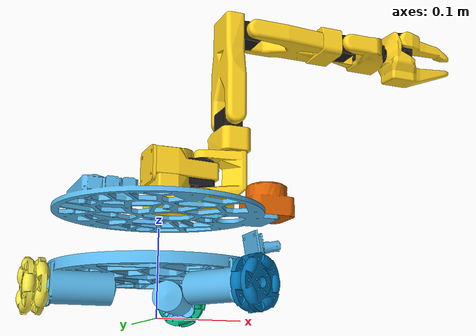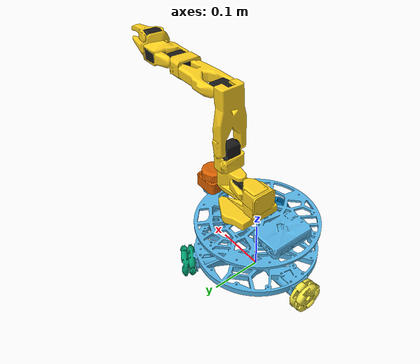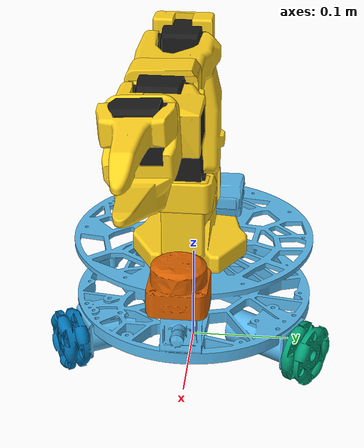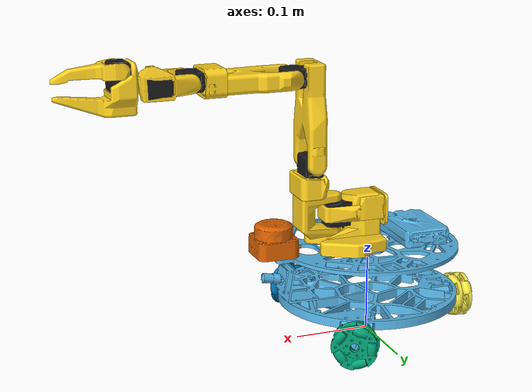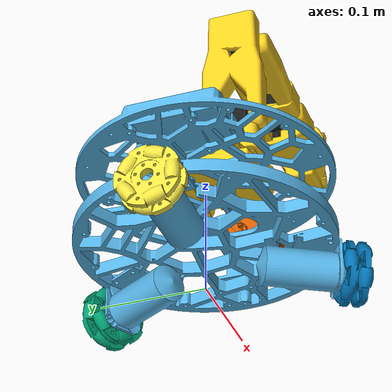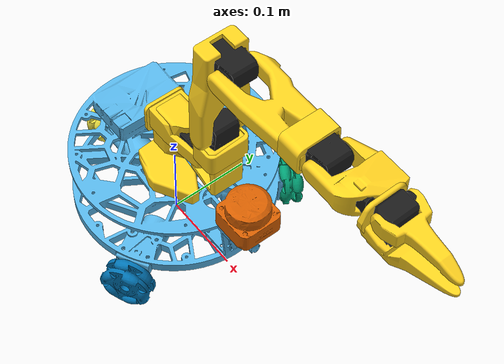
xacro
<?xml version="1.0"?>
<!-- mmr_bot - top-level description                                        -->
<!--   base_footprint                                                       -->
<!--    +- base_link                        (chassis, camera and Pi merged)  -->
<!--        +- wheel_0_link                 continuous,  60 deg              -->
<!--        +- wheel_1_link                 continuous, 180 deg              -->
<!--        +- wheel_2_link                 continuous, 300 deg              -->
<!--        +- laser_frame                  fixed, RPLIDAR C1                -->
<!--        +- arm_base_link                fixed, SO-101 mount              -->
<!--            +- arm_shoulder_link        shoulder_pan                     -->
<!--                +- arm_upper_arm_link   shoulder_lift                    -->
<!--                    +- arm_lower_arm_link   elbow_flex                   -->
<!--                        +- arm_wrist_link   wrist_flex                   -->
<!--                            +- arm_gripper_link         wrist_roll       -->
<!--                                +- arm_moving_jaw_..._link  gripper      -->
<!--                                +- arm_gripper_frame_link   fixed        -->
<!-- 14 links, 13 joints, of which 9 are movable (3 wheels + 6 arm).         -->
<robot name="mmr_bot" xmlns:xacro="http://www.ros.org/wiki/xacro">

  <xacro:include filename="$(find mmr_pkg)/urdf/inertial_macros.xacro"/>
  <xacro:include filename="$(find mmr_pkg)/urdf/base.xacro"/>
  <xacro:include filename="$(find mmr_pkg)/urdf/sensors.xacro"/>
  <xacro:include filename="$(find mmr_pkg)/urdf/arm.xacro"/>

  <!-- SO-101 arm mount.                                                   -->
  <!-- Solved exactly, not eyeballed. The CAD part 'Base_SO101 v12:1' and   -->
  <!-- upstream 'base_so101_v2.stl' were shown to share an identical local  -->
  <!-- mesh frame (bbox agreement to 1e-16 m), so the arm's URDF base_link  -->
  <!-- is recovered as  T_arm = T_cad_world * inv(T_urdf_visual_origin).    -->
  <!-- Round-tripping the STL back through that transform reproduces the    -->
  <!-- CAD world bbox to within 0.5 mm. See tools/arm_mount.py.             -->
  <!-- rpy is exactly zero: the arm's forward axis already coincides with   -->
  <!-- the robot's, both facing CAD -Y.                                     -->
  <xacro:property name="arm_mount_x" value="0.014091"/>
  <xacro:property name="arm_mount_y" value="-0.000442"/>
  <xacro:property name="arm_mount_z" value="0.079200"/>

  <xacro:so101_arm prefix="arm_" parent="base_link">
    <origin xyz="${arm_mount_x} ${arm_mount_y} ${arm_mount_z}" rpy="0 0 0"/>
  </xacro:so101_arm>

</robot>

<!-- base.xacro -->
<!-- mmr_bot chassis: kiwi drive, three omniwheels at 120 degrees.          -->
<!-- EVERY dimension below is measured from the Fusion 360 STEP export       -->
<!-- (tools/step_parse.py -> tools/extract_meshes.py). Nothing is invented.  -->
<!-- Provenance for each value is in README.md, section "Derived geometry".  -->
<!-- Frame convention (brief section 3.3):                                   -->
<!--   base_footprint  ground plane, directly under the wheel-triad centre   -->
<!--   base_link       underside of the base plate, +X forward, +Z up        -->
<!--   wheel_i_link    at the axle; local +X is the spin axis, pointing      -->
<!--                   radially OUTWARD along the mounting angle             -->
<robot xmlns:xacro="http://www.ros.org/wiki/xacro">

  <!-- GEOMETRY - edit here and nowhere else                              -->

  <xacro:property name="wheel_radius"        value="0.030"/>
  <xacro:property name="wheel_width"         value="0.019"/>

  <!-- Centre of the wheel triad to each wheel centre. All three measure
       135.500 mm from the triad centroid, equal to better than 0.001 mm. -->
  <xacro:property name="base_radius"         value="0.135500"/>

  <!-- Mounting angles, degrees CCW from +X (forward). Confirmed: forward is
       CAD -Y, the direction the lidar, camera and arm all face. -->
  <xacro:property name="wheel_0_angle_deg"   value="60"/>
  <xacro:property name="wheel_1_angle_deg"   value="180"/>
  <xacro:property name="wheel_2_angle_deg"   value="300"/>

  <!-- Ground to base_link. base_link is the underside of the base plate;
       the plate measures z = 0.0001..12.0001 mm in this frame. -->
  <xacro:property name="base_link_height"    value="0.045"/>

  <xacro:property name="base_plate_radius"   value="0.120"/>
  <xacro:property name="base_plate_thick"    value="0.012"/>
  <xacro:property name="base_plate_z"        value="0.0"/>

  <xacro:property name="top_plate_radius"    value="0.120"/>
  <xacro:property name="top_plate_thick"     value="0.005"/>
  <xacro:property name="top_plate_z"         value="0.072"/>

  <xacro:property name="wheel_z" value="${wheel_radius - base_link_height}"/>

  <xacro:property name="use_inertial" value="false"/>

  <xacro:property name="deg" value="${pi/180.0}"/>

  <xacro:property name="mesh_visual"    value="package://mmr_pkg/meshes/visual"/>
  <xacro:property name="mesh_collision" value="package://mmr_pkg/meshes/collision"/>

  <!-- base_footprint                                                      -->
  <!-- link, and a footprint frame is massless by definition.              -->
  <link name="base_footprint"/>

  <joint name="base_footprint_joint" type="fixed">
    <origin xyz="0 0 ${base_link_height}" rpy="0 0 0"/>
    <parent link="base_footprint"/>
    <child  link="base_link"/>
  </joint>

  <!-- base_link                                                           -->
  <link name="base_link">
    <visual>
      <origin xyz="0 0 0" rpy="0 0 0"/>
      <geometry>
        <mesh filename="${mesh_visual}/base_link.obj"/>
      </geometry>
    </visual>

    <!-- Base plate: cylinder primitive, as the brief requires. -->
    <collision>
      <origin xyz="0 0 ${base_plate_z + base_plate_thick/2}" rpy="0 0 0"/>
      <geometry>
        <cylinder radius="${base_plate_radius}" length="${base_plate_thick}"/>
      </geometry>
    </collision>

    <!-- Top plate: cylinder primitive (forward lidar tab not included). -->
    <collision>
      <origin xyz="0 0 ${top_plate_z + top_plate_thick/2}" rpy="0 0 0"/>
      <geometry>
        <cylinder radius="${top_plate_radius}" length="${top_plate_thick}"/>
      </geometry>
    </collision>

    <!-- Motor + mount pod under each wheel. One convex hull, extracted in a
         canonical 0-degree frame, reused at all three mounting angles. -->
    <xacro:macro name="motor_pod_collision" params="angle_deg">
      <collision>
        <origin xyz="0 0 0" rpy="0 0 ${angle_deg * deg}"/>
        <geometry>
          <mesh filename="${mesh_collision}/motor_pod.stl"/>
        </geometry>
      </collision>
    </xacro:macro>
    <xacro:motor_pod_collision angle_deg="${wheel_0_angle_deg}"/>
    <xacro:motor_pod_collision angle_deg="${wheel_1_angle_deg}"/>
    <xacro:motor_pod_collision angle_deg="${wheel_2_angle_deg}"/>

    <!-- Camera pod and Pi stack: convex hulls, already in base_link frame. -->
    <collision>
      <origin xyz="0 0 0" rpy="0 0 0"/>
      <geometry>
        <mesh filename="${mesh_collision}/camera_pod.stl"/>
      </geometry>
    </collision>
    <collision>
      <origin xyz="0 0 0" rpy="0 0 0"/>
      <geometry>
        <mesh filename="${mesh_collision}/pi_stack.stl"/>
      </geometry>
    </collision>

    <xacro:if value="${use_inertial}">
    </xacro:if>
  </link>

  <!-- Wheels                                                              -->
  <!-- The link frame is base_link -> Trans(base_radius @ angle, wheel_z)   -->
  <!--                             -> Rz(angle)                            -->
  <!-- so local +X is radially outward and IS the spin axis. wheel.obj was  -->
  <!-- exported into exactly this frame, which is why one mesh serves all   -->
  <!-- three wheels. Verified after export: radius 0.03001 m about local    -->
  <!-- +X, half-width 0.01365 m.                                           -->
  <xacro:macro name="omni_wheel" params="index angle_deg">
    <joint name="wheel_${index}_joint" type="continuous">
      <origin xyz="${base_radius * cos(angle_deg * deg)}
                   ${base_radius * sin(angle_deg * deg)}
                   ${wheel_z}"
              rpy="0 0 ${angle_deg * deg}"/>
      <parent link="base_link"/>
      <child  link="wheel_${index}_link"/>
      <axis xyz="1 0 0"/>
    </joint>

    <link name="wheel_${index}_link">
      <visual>
        <origin xyz="0 0 0" rpy="0 0 0"/>
        <geometry>
          <mesh filename="${mesh_visual}/wheel.obj"/>
        </geometry>
      </visual>

      <!-- Cylinder primitive, as the brief requires. A URDF cylinder is
           built about +Z, so rotate it onto the +X spin axis. -->
      <collision>
        <origin xyz="0 0 0" rpy="0 ${pi/2} 0"/>
        <geometry>
          <cylinder radius="${wheel_radius}" length="${wheel_width}"/>
        </geometry>
      </collision>

      <!-- TODO(inertial): per-wheel mass not supplied. See base_link. -->
      <xacro:if value="${use_inertial}">
      </xacro:if>
    </link>
  </xacro:macro>

  <xacro:omni_wheel index="0" angle_deg="${wheel_0_angle_deg}"/>
  <xacro:omni_wheel index="1" angle_deg="${wheel_1_angle_deg}"/>
  <xacro:omni_wheel index="2" angle_deg="${wheel_2_angle_deg}"/>

</robot>

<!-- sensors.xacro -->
<!-- Sensors. Phase 1 adds the link and fixed joint only; the Gazebo         -->
<!-- gpu_lidar sensor and the ros_gz bridge belong to Phase 2.               -->
<robot xmlns:xacro="http://www.ros.org/wiki/xacro">

  <xacro:property name="laser_x" value="0.133781"/>
  <xacro:property name="laser_y" value="0.000004"/>
  <xacro:property name="laser_z" value="0.105180"/>

  <!-- rpy is identity: the lidar body is axis-aligned with base_link in CAD,
       and the C1 scans in its own XY plane with zero angle at its +X. -->
  <xacro:property name="laser_roll"  value="0"/>
  <xacro:property name="laser_pitch" value="0"/>
  <xacro:property name="laser_yaw"   value="0"/>

  <joint name="laser_joint" type="fixed">
    <origin xyz="${laser_x} ${laser_y} ${laser_z}"
            rpy="${laser_roll} ${laser_pitch} ${laser_yaw}"/>
    <parent link="base_link"/>
    <child  link="laser_frame"/>
  </joint>

  <link name="laser_frame">
    <visual>
      <origin xyz="0 0 0" rpy="0 0 0"/>
      <geometry>
        <mesh filename="package://mmr_pkg/meshes/visual/rplidar_c1.obj"/>
      </geometry>
    </visual>
    <collision>
      <origin xyz="0 0 0" rpy="0 0 0"/>
      <geometry>
        <mesh filename="package://mmr_pkg/meshes/collision/rplidar_c1.stl"/>
      </geometry>
    </collision>
    <!-- TODO(inertial): RPLIDAR C1 mass not supplied. Datasheet value or a
         Fusion physical-properties readout would fill this. Not invented. -->
  </link>

</robot>

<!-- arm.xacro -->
<!-- SO-101 arm, vendored from TheRobotStudio/SO-ARM100                    -->
<!--   source: Simulation/SO101/so101_new_calib.urdf                       -->
<!--   GENERATED by tools/gen_arm_xacro.py - do not hand-edit.             -->
<!-- Joint names are deliberately NOT prefixed: a LeRobot policy is        -->
<!-- trained against this exact action space. Link names ARE prefixed to   -->
<!-- avoid colliding with the chassis root, which is also called           -->
<!-- base_link upstream.                                                   -->
<robot xmlns:xacro="http://www.ros.org/wiki/xacro">

  <material name="3d_printed">
    <color rgba="1.0 0.82 0.12 1.0"/>
  </material>
  <material name="sts3215">
    <color rgba="0.1 0.1 0.1 1.0"/>
  </material>

  <!-- prefix : name prefix for every arm LINK (not joints)
       parent : link the arm bolts to
       *origin: mount transform, parent -> ${prefix}base_link -->
  <xacro:macro name="so101_arm" params="prefix parent *origin">

    <joint name="${prefix}base_joint" type="fixed">
      <xacro:insert_block name="origin"/>
      <parent link="${parent}"/>
      <child link="${prefix}base_link"/>
    </joint>

    <!-- Link base -->
    <link name="${prefix}base_link">
      <inertial>
        <origin xyz="0.0137179 -5.19711e-05 0.0334843" rpy="0 0 0"/>
        <mass value="0.147"/>
        <inertia ixx="0.000114686" ixy="-4.59787e-07" ixz="4.97151e-06" iyy="0.000136117" iyz="9.75275e-08" izz="0.000130364"/>
      </inertial>
      <!-- Part base_motor_holder_so101_v1 -->
      <visual>
        <origin xyz="-0.00636471 -9.94414e-05 -0.0024" rpy="1.5708 -1.67685e-15 1.5708"/>
        <geometry>
          <mesh filename="package://mmr_pkg/meshes/arm/base_motor_holder_so101_v1.stl"/>
        </geometry>
        <material name="3d_printed"/>
      </visual>
      <collision>
        <origin xyz="-0.00636471 -9.94414e-05 -0.0024" rpy="1.5708 -1.67685e-15 1.5708"/>
        <geometry>
          <mesh filename="package://mmr_pkg/meshes/collision/arm/base_motor_holder_so101_v1.stl"/>
        </geometry>
      </collision>
      <!-- Part base_so101_v2 -->
      <visual>
        <origin xyz="-0.00636471 -8.97657e-09 -0.0024" rpy="1.5708 -2.78073e-29 1.5708"/>
        <geometry>
          <mesh filename="package://mmr_pkg/meshes/arm/base_so101_v2.stl"/>
        </geometry>
        <material name="3d_printed"/>
      </visual>
      <collision>
        <origin xyz="-0.00636471 -8.97657e-09 -0.0024" rpy="1.5708 -2.78073e-29 1.5708"/>
        <geometry>
          <mesh filename="package://mmr_pkg/meshes/collision/arm/base_so101_v2.stl"/>
        </geometry>
      </collision>
      <!-- Part sts3215_03a_v1 -->
      <visual>
        <origin xyz="0.0263353 -8.97657e-09 0.0437" rpy="-8.21148e-16 7.84513e-18 1.249e-15"/>
        <geometry>
          <mesh filename="package://mmr_pkg/meshes/arm/sts3215_03a_v1.stl"/>
        </geometry>
        <material name="sts3215"/>
      </visual>
      <collision>
        <origin xyz="0.0263353 -8.97657e-09 0.0437" rpy="-8.21148e-16 7.84513e-18 1.249e-15"/>
        <geometry>
          <mesh filename="package://mmr_pkg/meshes/collision/arm/sts3215_03a_v1.stl"/>
        </geometry>
      </collision>
      <!-- Part waveshare_mounting_plate_so101_v2 -->
      <visual>
        <origin xyz="-0.0309827 -0.000199441 0.0474" rpy="1.5708 -1.35493e-14 1.5708"/>
        <geometry>
          <mesh filename="package://mmr_pkg/meshes/arm/waveshare_mounting_plate_so101_v2.stl"/>
        </geometry>
        <material name="3d_printed"/>
      </visual>
      <collision>
        <origin xyz="-0.0309827 -0.000199441 0.0474" rpy="1.5708 -1.35493e-14 1.5708"/>
        <geometry>
          <mesh filename="package://mmr_pkg/meshes/collision/arm/waveshare_mounting_plate_so101_v2.stl"/>
        </geometry>
      </collision>
    </link>

    <!-- Link shoulder -->
    <link name="${prefix}shoulder_link">
      <inertial>
        <origin xyz="-0.0307604 -1.66727e-05 -0.0252713" rpy="0 0 0"/>
        <mass value="0.100006"/>
        <inertia ixx="8.3759e-05" ixy="7.55525e-08" ixz="-1.16342e-06" iyy="8.10403e-05" iyz="1.54663e-07" izz="2.39783e-05"/>
      </inertial>
      <!-- Part sts3215_03a_v1_2 -->
      <visual>
        <origin xyz="-0.0303992 0.000422241 -0.0417" rpy="1.5708 1.5708 0"/>
        <geometry>
          <mesh filename="package://mmr_pkg/meshes/arm/sts3215_03a_v1.stl"/>
        </geometry>
        <material name="sts3215"/>
      </visual>
      <collision>
        <origin xyz="-0.0303992 0.000422241 -0.0417" rpy="1.5708 1.5708 0"/>
        <geometry>
          <mesh filename="package://mmr_pkg/meshes/collision/arm/sts3215_03a_v1.stl"/>
        </geometry>
      </collision>
      <!-- Part motor_holder_so101_base_v1 -->
      <visual>
        <origin xyz="-0.0675992 -0.000177759 0.0158499" rpy="1.5708 -1.5708 0"/>
        <geometry>
          <mesh filename="package://mmr_pkg/meshes/arm/motor_holder_so101_base_v1.stl"/>
        </geometry>
        <material name="3d_printed"/>
      </visual>
      <collision>
        <origin xyz="-0.0675992 -0.000177759 0.0158499" rpy="1.5708 -1.5708 0"/>
        <geometry>
          <mesh filename="package://mmr_pkg/meshes/collision/arm/motor_holder_so101_base_v1.stl"/>
        </geometry>
      </collision>
      <!-- Part rotation_pitch_so101_v1 -->
      <visual>
        <origin xyz="0.0122008 2.22413e-05 0.0464" rpy="-1.5708 2.35221e-33 0"/>
        <geometry>
          <mesh filename="package://mmr_pkg/meshes/arm/rotation_pitch_so101_v1.stl"/>
        </geometry>
        <material name="3d_printed"/>
      </visual>
      <collision>
        <origin xyz="0.0122008 2.22413e-05 0.0464" rpy="-1.5708 2.35221e-33 0"/>
        <geometry>
          <mesh filename="package://mmr_pkg/meshes/collision/arm/rotation_pitch_so101_v1.stl"/>
        </geometry>
      </collision>
    </link>

    <!-- Link upper_arm -->
    <link name="${prefix}upper_arm_link">
      <inertial>
        <origin xyz="-0.0898471 -0.00838224 0.0184089" rpy="0 0 0"/>
        <mass value="0.103"/>
        <inertia ixx="4.08002e-05" ixy="-1.97819e-05" ixz="-4.03016e-08" iyy="0.000147318" iyz="8.97326e-09" izz="0.000142487"/>
      </inertial>
      <!-- Part sts3215_03a_v1_3 -->
      <visual>
        <origin xyz="-0.11257 -0.0155 0.0187" rpy="-3.14159 -5.27356e-16 -1.5708"/>
        <geometry>
          <mesh filename="package://mmr_pkg/meshes/arm/sts3215_03a_v1.stl"/>
        </geometry>
        <material name="sts3215"/>
      </visual>
      <collision>
        <origin xyz="-0.11257 -0.0155 0.0187" rpy="-3.14159 -5.27356e-16 -1.5708"/>
        <geometry>
          <mesh filename="package://mmr_pkg/meshes/collision/arm/sts3215_03a_v1.stl"/>
        </geometry>
      </collision>
      <!-- Part upper_arm_so101_v1 -->
      <visual>
        <origin xyz="-0.065085 0.012 0.0182" rpy="3.14159 -0 -1.30911e-30"/>
        <geometry>
          <mesh filename="package://mmr_pkg/meshes/arm/upper_arm_so101_v1.stl"/>
        </geometry>
        <material name="3d_printed"/>
      </visual>
      <collision>
        <origin xyz="-0.065085 0.012 0.0182" rpy="3.14159 -0 -1.30911e-30"/>
        <geometry>
          <mesh filename="package://mmr_pkg/meshes/collision/arm/upper_arm_so101_v1.stl"/>
        </geometry>
      </collision>
    </link>

    <!-- Link lower_arm -->
    <link name="${prefix}lower_arm_link">
      <inertial>
        <origin xyz="-0.0980701 0.00324376 0.0182831" rpy="0 0 0"/>
        <mass value="0.104"/>
        <inertia ixx="2.87438e-05" ixy="7.41152e-06" ixz="1.26409e-06" iyy="0.000159844" iyz="-4.90188e-08" izz="0.00014529"/>
      </inertial>
      <!-- Part under_arm_so101_v1 -->
      <visual>
        <origin xyz="-0.0648499 -0.032 0.0182" rpy="3.14159 -0 6.67202e-31"/>
        <geometry>
          <mesh filename="package://mmr_pkg/meshes/arm/under_arm_so101_v1.stl"/>
        </geometry>
        <material name="3d_printed"/>
      </visual>
      <collision>
        <origin xyz="-0.0648499 -0.032 0.0182" rpy="3.14159 -0 6.67202e-31"/>
        <geometry>
          <mesh filename="package://mmr_pkg/meshes/collision/arm/under_arm_so101_v1.stl"/>
        </geometry>
      </collision>
      <!-- Part motor_holder_so101_wrist_v1 -->
      <visual>
        <origin xyz="-0.0648499 -0.032 0.018" rpy="-3.14159 -2.55351e-15 -1.83387e-30"/>
        <geometry>
          <mesh filename="package://mmr_pkg/meshes/arm/motor_holder_so101_wrist_v1.stl"/>
        </geometry>
        <material name="3d_printed"/>
      </visual>
      <collision>
        <origin xyz="-0.0648499 -0.032 0.018" rpy="-3.14159 -2.55351e-15 -1.83387e-30"/>
        <geometry>
          <mesh filename="package://mmr_pkg/meshes/collision/arm/motor_holder_so101_wrist_v1.stl"/>
        </geometry>
      </collision>
      <!-- Part sts3215_03a_v1_4 -->
      <visual>
        <origin xyz="-0.1224 0.0052 0.0187" rpy="-3.14159 -7.88861e-31 -3.14159"/>
        <geometry>
          <mesh filename="package://mmr_pkg/meshes/arm/sts3215_03a_v1.stl"/>
        </geometry>
        <material name="sts3215"/>
      </visual>
      <collision>
        <origin xyz="-0.1224 0.0052 0.0187" rpy="-3.14159 -7.88861e-31 -3.14159"/>
        <geometry>
          <mesh filename="package://mmr_pkg/meshes/collision/arm/sts3215_03a_v1.stl"/>
        </geometry>
      </collision>
    </link>

    <!-- Link wrist -->
    <link name="${prefix}wrist_link">
      <inertial>
        <origin xyz="-0.000103312 -0.0386143 0.0281156" rpy="0 0 0"/>
        <mass value="0.079"/>
        <inertia ixx="3.68263e-05" ixy="1.7893e-08" ixz="-5.28128e-08" iyy="2.5391e-05" iyz="3.6412e-06" izz="2.1e-05"/>
      </inertial>
      <!-- Part sts3215_03a_no_horn_v1 -->
      <visual>
        <origin xyz="8.32667e-17 -0.0424 0.0306" rpy="1.5708 1.5708 0"/>
        <geometry>
          <mesh filename="package://mmr_pkg/meshes/arm/sts3215_03a_no_horn_v1.stl"/>
        </geometry>
        <material name="sts3215"/>
      </visual>
      <collision>
        <origin xyz="8.32667e-17 -0.0424 0.0306" rpy="1.5708 1.5708 0"/>
        <geometry>
          <mesh filename="package://mmr_pkg/meshes/collision/arm/sts3215_03a_no_horn_v1.stl"/>
        </geometry>
      </collision>
      <!-- Part wrist_roll_pitch_so101_v2 -->
      <visual>
        <origin xyz="0 -0.028 0.0181" rpy="-1.5708 -1.5708 0"/>
        <geometry>
          <mesh filename="package://mmr_pkg/meshes/arm/wrist_roll_pitch_so101_v2.stl"/>
        </geometry>
        <material name="3d_printed"/>
      </visual>
      <collision>
        <origin xyz="0 -0.028 0.0181" rpy="-1.5708 -1.5708 0"/>
        <geometry>
          <mesh filename="package://mmr_pkg/meshes/collision/arm/wrist_roll_pitch_so101_v2.stl"/>
        </geometry>
      </collision>
    </link>

    <!-- Link gripper -->
    <link name="${prefix}gripper_link">
      <inertial>
        <origin xyz="0.000213627 0.000245138 -0.025187" rpy="0 0 0"/>
        <mass value="0.087"/>
        <inertia ixx="2.75087e-05" ixy="-3.35241e-07" ixz="-5.7352e-06" iyy="4.33657e-05" iyz="-5.17847e-08" izz="3.45059e-05"/>
      </inertial>
      <!-- Part sts3215_03a_v1_5 -->
      <visual>
        <origin xyz="0.0077 0.0001 -0.0234" rpy="-1.5708 -5.19179e-17 -1.66533e-16"/>
        <geometry>
          <mesh filename="package://mmr_pkg/meshes/arm/sts3215_03a_v1.stl"/>
        </geometry>
        <material name="sts3215"/>
      </visual>
      <collision>
        <origin xyz="0.0077 0.0001 -0.0234" rpy="-1.5708 -5.19179e-17 -1.66533e-16"/>
        <geometry>
          <mesh filename="package://mmr_pkg/meshes/collision/arm/sts3215_03a_v1.stl"/>
        </geometry>
      </collision>
      <!-- Part wrist_roll_follower_so101_v1 -->
      <visual>
        <origin xyz="8.32667e-17 -0.000218214 0.000949706" rpy="-3.14159 -5.55112e-17 0"/>
        <geometry>
          <mesh filename="package://mmr_pkg/meshes/arm/wrist_roll_follower_so101_v1.stl"/>
        </geometry>
        <material name="3d_printed"/>
      </visual>
      <collision>
        <origin xyz="8.32667e-17 -0.000218214 0.000949706" rpy="-3.14159 -5.55112e-17 0"/>
        <geometry>
          <mesh filename="package://mmr_pkg/meshes/collision/arm/wrist_roll_follower_so101_v1.stl"/>
        </geometry>
      </collision>
    </link>

    <!-- Gripper frame (dummy link + fixed joint) -->
    <link name="${prefix}gripper_frame_link">
      <inertial>
        <origin xyz="0 0 0" rpy="0 0 0"/>
        <mass value="1e-9"/>
        <inertia ixx="0" ixy="0" ixz="0" iyy="0" iyz="0" izz="0"/>
      </inertial>
    </link>

    <joint name="gripper_frame_joint" type="fixed">
      <origin xyz="-0.0079 -0.000218121 -0.0981274" rpy="0 3.14159 0"/>
      <parent link="${prefix}gripper_link"/>
      <child link="${prefix}gripper_frame_link"/>
      <axis xyz="0 0 0"/>
    </joint>

    <!-- Link moving_jaw_so101_v1 -->
    <link name="${prefix}moving_jaw_so101_v1_link">
      <inertial>
        <origin xyz="-0.00157495 -0.0300244 0.0192755" rpy="0 0 0"/>
        <mass value="0.012"/>
        <inertia ixx="6.61427e-06" ixy="-3.19807e-07" ixz="-5.90717e-09" iyy="1.89032e-06" iyz="-1.09945e-07" izz="5.28738e-06"/>
      </inertial>
      <!-- Part moving_jaw_so101_v1 -->
      <visual>
        <origin xyz="-5.55112e-17 -5.55112e-17 0.0189" rpy="9.53145e-17 6.93889e-18 1.24077e-24"/>
        <geometry>
          <mesh filename="package://mmr_pkg/meshes/arm/moving_jaw_so101_v1.stl"/>
        </geometry>
        <material name="3d_printed"/>
      </visual>
      <collision>
        <origin xyz="-5.55112e-17 -5.55112e-17 0.0189" rpy="9.53145e-17 6.93889e-18 1.24077e-24"/>
        <geometry>
          <mesh filename="package://mmr_pkg/meshes/collision/arm/moving_jaw_so101_v1.stl"/>
        </geometry>
      </collision>
    </link>

    <!-- Joint from gripper to moving_jaw_so101_v1 -->
    <joint name="gripper" type="revolute">
      <origin xyz="0.0202 0.0188 -0.0234" rpy="1.5708 -5.24284e-08 -1.41553e-15"/>
      <parent link="${prefix}gripper_link"/>
      <child link="${prefix}moving_jaw_so101_v1_link"/>
      <axis xyz="0 0 1"/>
      <limit effort="10" velocity="10" lower="-0.174533" upper="1.74533"/>
    </joint>

    <!-- Joint from wrist to gripper -->
    <joint name="wrist_roll" type="revolute">
      <origin xyz="5.55112e-17 -0.0611 0.0181" rpy="1.5708 0.0486795 3.14159"/>
      <parent link="${prefix}wrist_link"/>
      <child link="${prefix}gripper_link"/>
      <axis xyz="0 0 1"/>
      <limit effort="10" velocity="10" lower="-2.74385" upper="2.84121"/>
    </joint>

    <!-- Joint from lower_arm to wrist -->
    <joint name="wrist_flex" type="revolute">
      <origin xyz="-0.1349 0.0052 3.62355e-17" rpy="4.02456e-15 8.67362e-16 -1.5708"/>
      <parent link="${prefix}lower_arm_link"/>
      <child link="${prefix}wrist_link"/>
      <axis xyz="0 0 1"/>
      <limit effort="10" velocity="10" lower="-1.65806" upper="1.65806"/>
    </joint>

    <!-- Joint from upper_arm to lower_arm -->
    <!-- Note: 5-degree calibration offset applied to joint limits -->
    <joint name="elbow_flex" type="revolute">
      <origin xyz="-0.11257 -0.028 1.73763e-16" rpy="-3.63608e-16 8.74301e-16 1.5708"/>
      <parent link="${prefix}upper_arm_link"/>
      <child link="${prefix}lower_arm_link"/>
      <axis xyz="0 0 1"/>
      <limit effort="10" velocity="10" lower="-1.69" upper="1.69"/>
    </joint>

    <!-- Joint from shoulder to upper_arm -->
    <joint name="shoulder_lift" type="revolute">
      <origin xyz="-0.0303992 -0.0182778 -0.0542" rpy="-1.5708 -1.5708 0"/>
      <parent link="${prefix}shoulder_link"/>
      <child link="${prefix}upper_arm_link"/>
      <axis xyz="0 0 1"/>
      <limit effort="10" velocity="10" lower="-1.74533" upper="1.74533"/>
    </joint>

    <!-- Joint from base to shoulder -->
    <joint name="shoulder_pan" type="revolute">
      <origin xyz="0.0388353 -8.97657e-09 0.0624" rpy="3.14159 4.18253e-17 -3.14159"/>
      <parent link="${prefix}base_link"/>
      <child link="${prefix}shoulder_link"/>
      <axis xyz="0 0 1"/>
      <limit effort="10" velocity="10" lower="-1.91986" upper="1.91986"/>
    </joint>

  </xacro:macro>
</robot>
